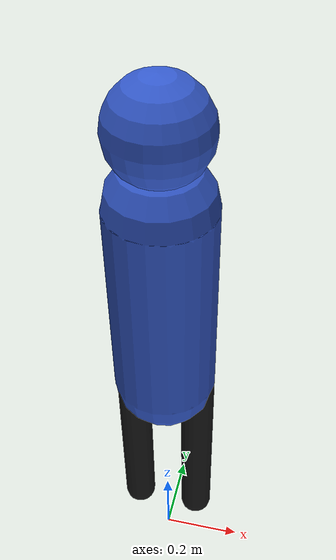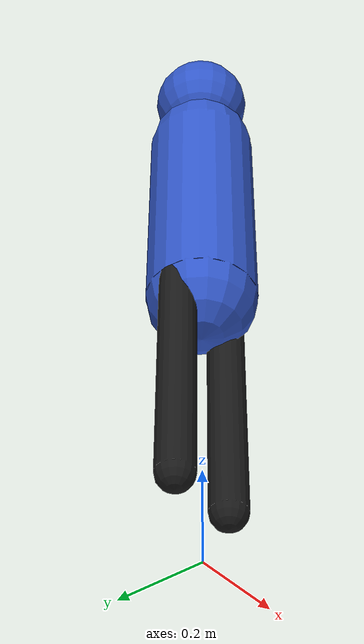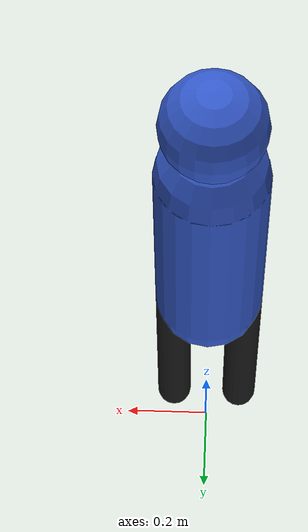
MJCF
<mujoco model="blueprint_fixture_unitree_g1_smoke">
  <compiler angle="radian"/>
  <option timestep="0.01" gravity="0 0 -9.81"/>
  <worldbody>
    <body name="pelvis" pos="0 0 0.9">
      <freejoint name="floating_base_joint"/>
      <geom name="fixture_torso" type="capsule" fromto="0 0 -0.25 0 0 0.25" size="0.12" rgba="0.2 0.35 0.8 1" mass="8"/>
      <geom name="fixture_head" type="sphere" pos="0 0 0.42" size="0.11" rgba="0.2 0.35 0.8 1" mass="1"/>
      <geom name="fixture_left_leg" type="capsule" fromto="-0.08 0 -0.25 -0.08 0 -0.75" size="0.04" rgba="0.1 0.1 0.1 1" mass="1"/>
      <geom name="fixture_right_leg" type="capsule" fromto="0.08 0 -0.25 0.08 0 -0.75" size="0.04" rgba="0.1 0.1 0.1 1" mass="1"/>
    </body>
  </worldbody>
  <keyframe>
    <key name="stand" qpos="0 0 0.9 1 0 0 0"/>
  </keyframe>
</mujoco>
